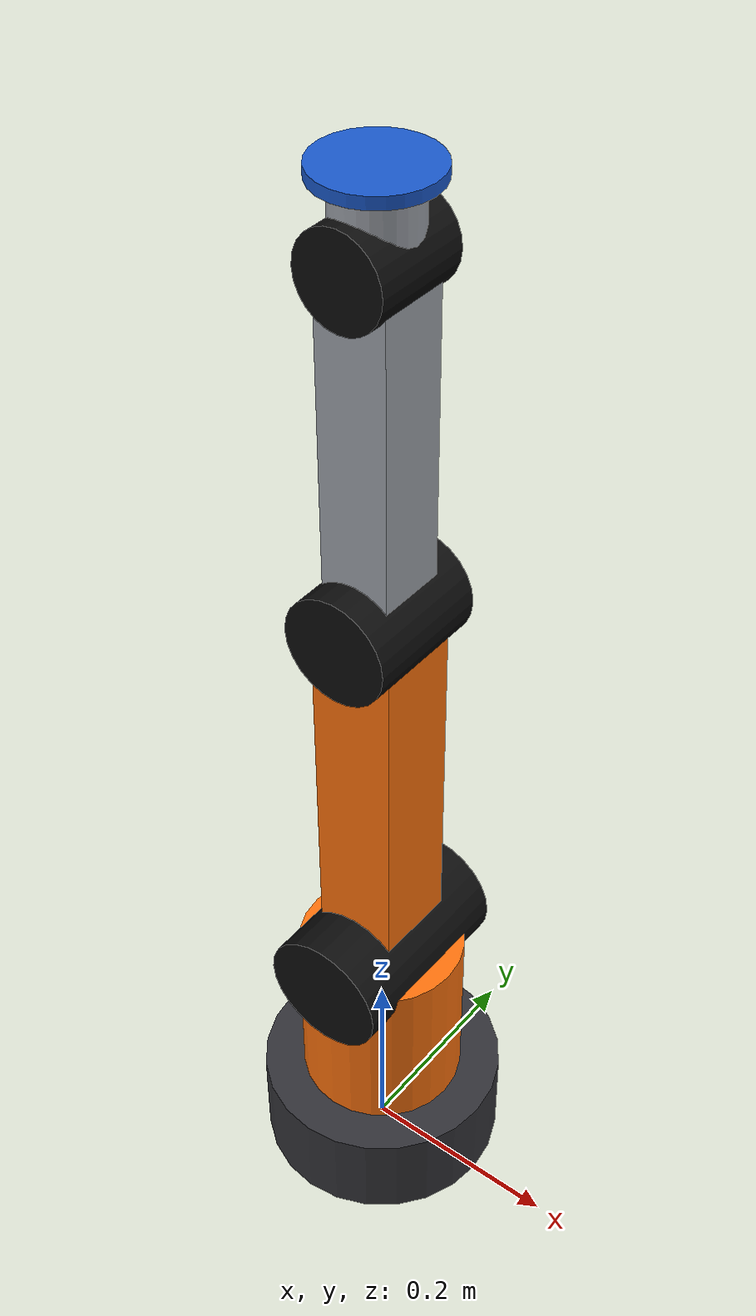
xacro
<?xml version="1.0"?>
<robot name="industrial_4dof_arm" xmlns:xacro="http://www.ros.org/wiki/xacro">

  <xacro:include filename="materials.xacro"/>
  <xacro:include filename="inertials.xacro"/>

  <!-- Parameters                                                   -->

  <!-- Wrist axis: "pitch" rotates about Y, "roll" rotates about X. -->
  <xacro:arg name="wrist_axis" default="pitch"/>
  <xacro:property name="wrist_axis" value="$(arg wrist_axis)"/>

  <xacro:property name="PI" value="3.141592653589793"/>

  <!-- Base pedestal -->
  <xacro:property name="base_radius" value="0.12"/>
  <xacro:property name="base_height" value="0.10"/>
  <xacro:property name="base_mass"   value="5.0"/>

  <!-- Link 1: shoulder turret -->
  <xacro:property name="link1_radius" value="0.08"/>
  <xacro:property name="link1_height" value="0.18"/>
  <xacro:property name="link1_mass"   value="3.0"/>
  <xacro:property name="shoulder_hub_radius" value="0.06"/>
  <xacro:property name="shoulder_hub_length" value="0.18"/>

  <!-- Link 2: upper arm -->
  <xacro:property name="link2_width"  value="0.08"/>
  <xacro:property name="link2_length" value="0.40"/>
  <xacro:property name="link2_mass"   value="2.5"/>
  <xacro:property name="elbow_hub_radius" value="0.05"/>
  <xacro:property name="elbow_hub_length" value="0.12"/>

  <!-- Link 3: forearm -->
  <xacro:property name="link3_width"  value="0.065"/>
  <xacro:property name="link3_length" value="0.32"/>
  <xacro:property name="link3_mass"   value="1.5"/>
  <xacro:property name="wrist_hub_radius" value="0.04"/>
  <xacro:property name="wrist_hub_length" value="0.09"/>

  <!-- Link 4: end-effector / gripper mounting base -->
  <xacro:property name="link4_radius" value="0.035"/>
  <xacro:property name="link4_length" value="0.06"/>
  <xacro:property name="link4_mass"   value="0.5"/>
  <xacro:property name="flange_radius"    value="0.05"/>
  <xacro:property name="flange_thickness" value="0.01"/>

  <!-- Joint limits: effort [N.m], velocity [rad/s] -->
  <xacro:property name="joint1_effort" value="150.0"/>
  <xacro:property name="joint1_velocity" value="1.5"/>
  <xacro:property name="joint2_effort" value="120.0"/>
  <xacro:property name="joint2_velocity" value="1.2"/>
  <xacro:property name="joint3_effort" value="80.0"/>
  <xacro:property name="joint3_velocity" value="1.5"/>
  <xacro:property name="joint4_effort" value="30.0"/>
  <xacro:property name="joint4_velocity" value="2.0"/>

  <!-- Joint dynamics: damping [N.m.s/rad], friction [N.m] -->
  <xacro:property name="joint_damping"  value="0.5"/>
  <xacro:property name="joint_friction" value="0.1"/>

  <!-- World anchor                                                 -->

  <link name="world"/>

  <joint name="world_to_base" type="fixed">
    <parent link="world"/>
    <child link="base_link"/>
    <origin xyz="0 0 0" rpy="0 0 0"/>
  </joint>

  <!-- Base link (fixed pedestal)                                   -->

  <link name="base_link">
    <visual>
      <origin xyz="0 0 ${base_height / 2.0}" rpy="0 0 0"/>
      <geometry>
        <cylinder radius="${base_radius}" length="${base_height}"/>
      </geometry>
      <material name="dark_grey"/>
    </visual>
    <collision>
      <origin xyz="0 0 ${base_height / 2.0}" rpy="0 0 0"/>
      <geometry>
        <cylinder radius="${base_radius}" length="${base_height}"/>
      </geometry>
    </collision>
    <xacro:cylinder_inertial mass="${base_mass}" radius="${base_radius}" length="${base_height}">
      <origin xyz="0 0 ${base_height / 2.0}" rpy="0 0 0"/>
    </xacro:cylinder_inertial>
  </link>

  <!-- Joint 1: waist rotation about Z (-180 deg .. +180 deg)       -->

  <joint name="joint_1" type="revolute">
    <parent link="base_link"/>
    <child link="link_1"/>
    <origin xyz="0 0 ${base_height}" rpy="0 0 0"/>
    <axis xyz="0 0 1"/>
    <limit lower="${-PI}" upper="${PI}" effort="${joint1_effort}" velocity="${joint1_velocity}"/>
    <dynamics damping="${joint_damping}" friction="${joint_friction}"/>
  </joint>

  <!-- Link 1: shoulder turret                                      -->

  <link name="link_1">
    <!-- Turret body -->
    <visual>
      <origin xyz="0 0 ${link1_height / 2.0}" rpy="0 0 0"/>
      <geometry>
        <cylinder radius="${link1_radius}" length="${link1_height}"/>
      </geometry>
      <material name="industrial_orange"/>
    </visual>
    <!-- Shoulder motor housing (cylinder axis along Y) -->
    <visual>
      <origin xyz="0 0 ${link1_height}" rpy="${PI / 2.0} 0 0"/>
      <geometry>
        <cylinder radius="${shoulder_hub_radius}" length="${shoulder_hub_length}"/>
      </geometry>
      <material name="black"/>
    </visual>
    <collision>
      <origin xyz="0 0 ${link1_height / 2.0}" rpy="0 0 0"/>
      <geometry>
        <cylinder radius="${link1_radius}" length="${link1_height}"/>
      </geometry>
    </collision>
    <collision>
      <origin xyz="0 0 ${link1_height}" rpy="${PI / 2.0} 0 0"/>
      <geometry>
        <cylinder radius="${shoulder_hub_radius}" length="${shoulder_hub_length}"/>
      </geometry>
    </collision>
    <xacro:cylinder_inertial mass="${link1_mass}" radius="${link1_radius}" length="${link1_height}">
      <origin xyz="0 0 ${link1_height / 2.0}" rpy="0 0 0"/>
    </xacro:cylinder_inertial>
  </link>

  <!-- Joint 2: shoulder pitch about Y (-90 deg .. +90 deg)         -->

  <joint name="joint_2" type="revolute">
    <parent link="link_1"/>
    <child link="link_2"/>
    <origin xyz="0 0 ${link1_height}" rpy="0 0 0"/>
    <axis xyz="0 1 0"/>
    <limit lower="${-PI / 2.0}" upper="${PI / 2.0}" effort="${joint2_effort}" velocity="${joint2_velocity}"/>
    <dynamics damping="${joint_damping}" friction="${joint_friction}"/>
  </joint>

  <!-- Link 2: upper arm                                            -->

  <link name="link_2">
    <!-- Arm beam -->
    <visual>
      <origin xyz="0 0 ${link2_length / 2.0}" rpy="0 0 0"/>
      <geometry>
        <box size="${link2_width} ${link2_width} ${link2_length}"/>
      </geometry>
      <material name="industrial_orange"/>
    </visual>
    <!-- Elbow motor housing (cylinder axis along Y) -->
    <visual>
      <origin xyz="0 0 ${link2_length}" rpy="${PI / 2.0} 0 0"/>
      <geometry>
        <cylinder radius="${elbow_hub_radius}" length="${elbow_hub_length}"/>
      </geometry>
      <material name="black"/>
    </visual>
    <collision>
      <origin xyz="0 0 ${link2_length / 2.0}" rpy="0 0 0"/>
      <geometry>
        <box size="${link2_width} ${link2_width} ${link2_length}"/>
      </geometry>
    </collision>
    <collision>
      <origin xyz="0 0 ${link2_length}" rpy="${PI / 2.0} 0 0"/>
      <geometry>
        <cylinder radius="${elbow_hub_radius}" length="${elbow_hub_length}"/>
      </geometry>
    </collision>
    <xacro:box_inertial mass="${link2_mass}" x="${link2_width}" y="${link2_width}" z="${link2_length}">
      <origin xyz="0 0 ${link2_length / 2.0}" rpy="0 0 0"/>
    </xacro:box_inertial>
  </link>

  <!-- Joint 3: elbow pitch about Y (-135 deg .. +135 deg)          -->

  <joint name="joint_3" type="revolute">
    <parent link="link_2"/>
    <child link="link_3"/>
    <origin xyz="0 0 ${link2_length}" rpy="0 0 0"/>
    <axis xyz="0 1 0"/>
    <limit lower="${-3.0 * PI / 4.0}" upper="${3.0 * PI / 4.0}" effort="${joint3_effort}" velocity="${joint3_velocity}"/>
    <dynamics damping="${joint_damping}" friction="${joint_friction}"/>
  </joint>

  <!-- Link 3: forearm                                              -->

  <link name="link_3">
    <!-- Forearm beam -->
    <visual>
      <origin xyz="0 0 ${link3_length / 2.0}" rpy="0 0 0"/>
      <geometry>
        <box size="${link3_width} ${link3_width} ${link3_length}"/>
      </geometry>
      <material name="steel_grey"/>
    </visual>
    <!-- Wrist motor housing (cylinder axis along Y) -->
    <visual>
      <origin xyz="0 0 ${link3_length}" rpy="${PI / 2.0} 0 0"/>
      <geometry>
        <cylinder radius="${wrist_hub_radius}" length="${wrist_hub_length}"/>
      </geometry>
      <material name="black"/>
    </visual>
    <collision>
      <origin xyz="0 0 ${link3_length / 2.0}" rpy="0 0 0"/>
      <geometry>
        <box size="${link3_width} ${link3_width} ${link3_length}"/>
      </geometry>
    </collision>
    <collision>
      <origin xyz="0 0 ${link3_length}" rpy="${PI / 2.0} 0 0"/>
      <geometry>
        <cylinder radius="${wrist_hub_radius}" length="${wrist_hub_length}"/>
      </geometry>
    </collision>
    <xacro:box_inertial mass="${link3_mass}" x="${link3_width}" y="${link3_width}" z="${link3_length}">
      <origin xyz="0 0 ${link3_length / 2.0}" rpy="0 0 0"/>
    </xacro:box_inertial>
  </link>

  <!-- Joint 4: wrist pitch about Y (or roll about X)               -->
  <!--          (-180 deg .. +180 deg)                              -->

  <joint name="joint_4" type="revolute">
    <parent link="link_3"/>
    <child link="link_4"/>
    <origin xyz="0 0 ${link3_length}" rpy="0 0 0"/>
    <xacro:if value="${wrist_axis == 'roll'}">
      <axis xyz="1 0 0"/>
    </xacro:if>
    <xacro:unless value="${wrist_axis == 'roll'}">
      <axis xyz="0 1 0"/>
    </xacro:unless>
    <limit lower="${-PI}" upper="${PI}" effort="${joint4_effort}" velocity="${joint4_velocity}"/>
    <dynamics damping="${joint_damping}" friction="${joint_friction}"/>
  </joint>

  <!-- Link 4: end-effector / gripper mounting base                 -->

  <link name="link_4">
    <!-- Wrist body -->
    <visual>
      <origin xyz="0 0 ${link4_length / 2.0}" rpy="0 0 0"/>
      <geometry>
        <cylinder radius="${link4_radius}" length="${link4_length}"/>
      </geometry>
      <material name="steel_grey"/>
    </visual>
    <!-- Tool mounting flange (ISO 9409 style plate) -->
    <visual>
      <origin xyz="0 0 ${link4_length + flange_thickness / 2.0}" rpy="0 0 0"/>
      <geometry>
        <cylinder radius="${flange_radius}" length="${flange_thickness}"/>
      </geometry>
      <material name="tool_blue"/>
    </visual>
    <collision>
      <origin xyz="0 0 ${(link4_length + flange_thickness) / 2.0}" rpy="0 0 0"/>
      <geometry>
        <cylinder radius="${flange_radius}" length="${link4_length + flange_thickness}"/>
      </geometry>
    </collision>
    <xacro:cylinder_inertial mass="${link4_mass}" radius="${link4_radius}" length="${link4_length + flange_thickness}">
      <origin xyz="0 0 ${(link4_length + flange_thickness) / 2.0}" rpy="0 0 0"/>
    </xacro:cylinder_inertial>
  </link>

  <!-- Tool centre point (gripper attaches here)                    -->

  <joint name="link_4_to_tool0" type="fixed">
    <parent link="link_4"/>
    <child link="tool0"/>
    <origin xyz="0 0 ${link4_length + flange_thickness}" rpy="0 0 0"/>
  </joint>

  <link name="tool0"/>

</robot>

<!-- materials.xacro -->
<!--
  materials.xacro
  Colour definitions for the 4-DOF industrial arm.
  RGBA components are in the range [0, 1].
-->
<robot xmlns:xacro="http://www.ros.org/wiki/xacro">

  <material name="dark_grey">
    <color rgba="0.20 0.20 0.22 1.0"/>
  </material>

  <material name="industrial_orange">
    <color rgba="1.00 0.45 0.05 1.0"/>
  </material>

  <material name="steel_grey">
    <color rgba="0.62 0.64 0.67 1.0"/>
  </material>

  <material name="black">
    <color rgba="0.05 0.05 0.05 1.0"/>
  </material>

  <material name="tool_blue">
    <color rgba="0.10 0.35 0.80 1.0"/>
  </material>

</robot>

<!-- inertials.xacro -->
<robot xmlns:xacro="http://www.ros.org/wiki/xacro">

  <xacro:macro name="box_inertial" params="mass x y z *origin">
    <inertial>
      <xacro:insert_block name="origin"/>
      <mass value="${mass}"/>
      <inertia ixx="${mass / 12.0 * (y * y + z * z)}" ixy="0.0" ixz="0.0"
               iyy="${mass / 12.0 * (x * x + z * z)}" iyz="0.0"
               izz="${mass / 12.0 * (x * x + y * y)}"/>
    </inertial>
  </xacro:macro>

  <xacro:macro name="cylinder_inertial" params="mass radius length *origin">
    <inertial>
      <xacro:insert_block name="origin"/>
      <mass value="${mass}"/>
      <inertia ixx="${mass / 12.0 * (3.0 * radius * radius + length * length)}" ixy="0.0" ixz="0.0"
               iyy="${mass / 12.0 * (3.0 * radius * radius + length * length)}" iyz="0.0"
               izz="${mass / 2.0 * radius * radius}"/>
    </inertial>
  </xacro:macro>

  <xacro:macro name="sphere_inertial" params="mass radius *origin">
    <inertial>
      <xacro:insert_block name="origin"/>
      <mass value="${mass}"/>
      <inertia ixx="${0.4 * mass * radius * radius}" ixy="0.0" ixz="0.0"
               iyy="${0.4 * mass * radius * radius}" iyz="0.0"
               izz="${0.4 * mass * radius * radius}"/>
    </inertial>
  </xacro:macro>

</robot>
